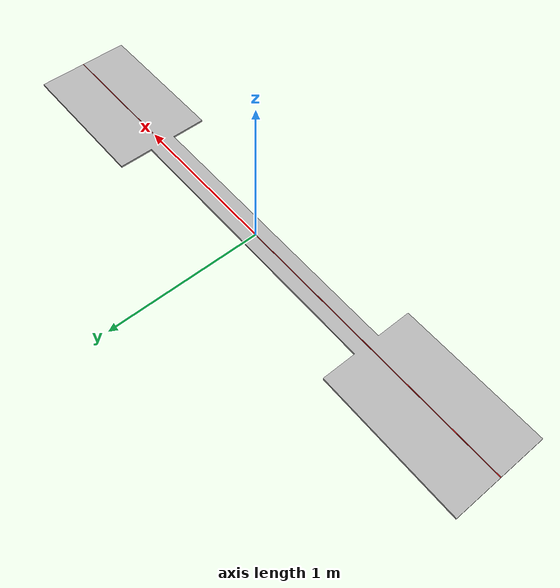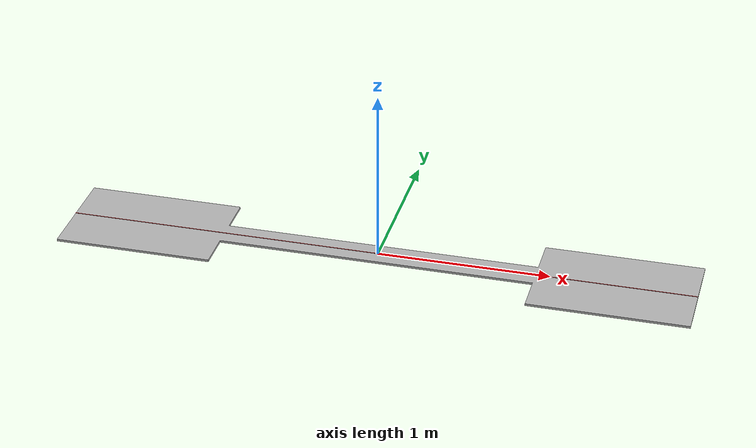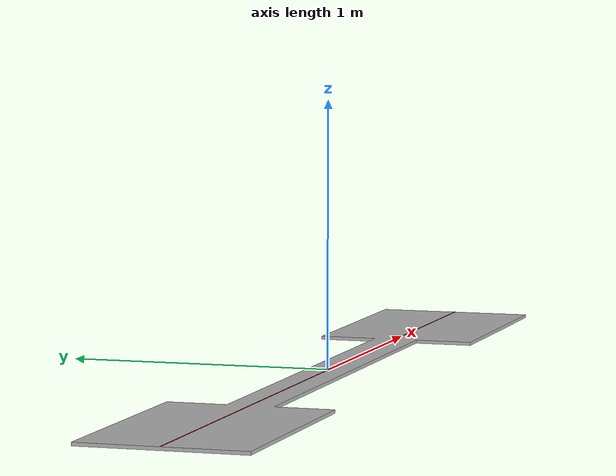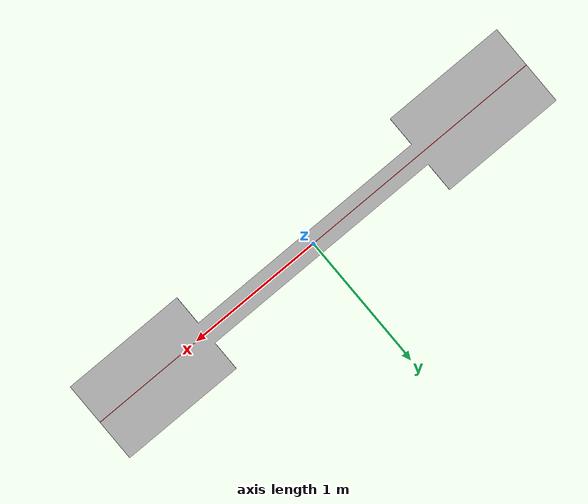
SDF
<?xml version="1.0"?>
<sdf version="1.6">
    <model name="beam_world_17cm">
      <static>true</static>
      <link name="body">
        <visual name="visual">
          <geometry>
            <mesh>
                <uri>meshes/beam_world_17cm.stl</uri>
            </mesh>
          </geometry>
        </visual>
        <visual name="centreline">
          <pose>0 0 0.0006 0 0 0</pose>
          <geometry>
            <box>
              <size>3.6576 0.004 0.001</size>
            </box>
          </geometry>
          <material>
            <ambient>1 0.1 0.1 1</ambient>
            <diffuse>1 0.1 0.1 1</diffuse>
            <specular>0 0 0 1</specular>
            <emissive>1 0.1 0.1 1</emissive>
          </material>
        </visual>

        <collision name="collision">
          <geometry>
            <mesh>
                <uri>meshes/beam_world_17cm.stl</uri>
            </mesh>
          </geometry>
          <surface>
            <friction>
              <ode>
                <mu>100</mu>
                <mu2>100</mu2>
              </ode>
            </friction>
          </surface>
        </collision>
      </link>
    </model>
</sdf>
